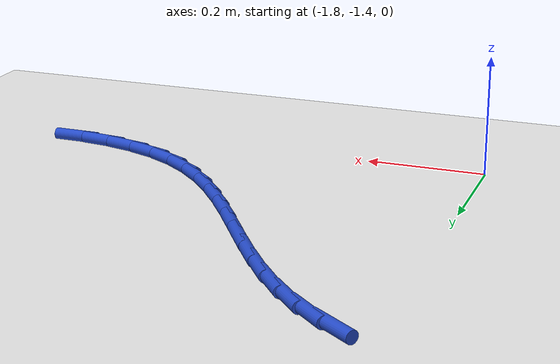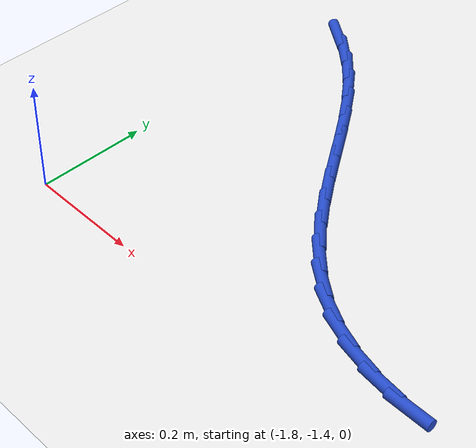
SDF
<sdf version="1.6">
 <world name="default">
  <model name="ground_plane">
   <static>1</static>
   <link name="link">
    <collision name="collision">
     <geometry><plane><normal>0 0 1</normal><size>100 100</size></plane></geometry>
     <surface><friction><ode><mu>100</mu><mu2>50</mu2></ode></friction></surface>
    </collision>
    <visual name="visual">
     <cast_shadows>0</cast_shadows>
     <geometry><plane><normal>0 0 1</normal><size>100 100</size></plane></geometry>
     <material>
      <script><uri>file://media/materials/scripts/gazebo.material</uri><name>Gazebo/WhiteGlow</name></script>
     </material>
    </visual>
   </link>
  </model>
  <model name="line">
   <link name="link_89">
    <pose>-1.744387899355237 -0.747061726689787 0.01 0 1.57 -0.608057349786397</pose>
    <collision name="collision">
     <geometry><cylinder><radius>0.01</radius><length>0.08</length></cylinder></geometry>
    </collision>
    <visual name="visual">
     <material>
      <script><name>Gazebo/Blue</name><uri>file://media/materials/scripts/gazebo.material</uri></script>
     </material>
     <geometry><cylinder><radius>0.01</radius><length>0.08</length></cylinder></geometry>
    </visual>
   </link>
   <link name="link_90">
    <pose>-1.7013352832800597 -0.7770276893729273 0.01 0 1.57 -0.7126815950881396</pose>
    <collision name="collision">
     <geometry><cylinder><radius>0.01</radius><length>0.08</length></cylinder></geometry>
    </collision>
    <visual name="visual">
     <material>
      <script><name>Gazebo/Blue</name><uri>file://media/materials/scripts/gazebo.material</uri></script>
     </material>
     <geometry><cylinder><radius>0.01</radius><length>0.08</length></cylinder></geometry>
    </visual>
   </link>
   <link name="link_91">
    <pose>-1.6616309877596263 -0.8113402280332115 0.01 0 1.57 -0.813413997352669</pose>
    <collision name="collision">
     <geometry><cylinder><radius>0.01</radius><length>0.08</length></cylinder></geometry>
    </collision>
    <visual name="visual">
     <material>
      <script><name>Gazebo/Blue</name><uri>file://media/materials/scripts/gazebo.material</uri></script>
     </material>
     <geometry><cylinder><radius>0.01</radius><length>0.08</length></cylinder></geometry>
    </visual>
   </link>
   <link name="link_92">
    <pose>-1.625172929646361 -0.8499005383385716 0.01 0 1.57 -0.8905216383640661</pose>
    <collision name="collision">
     <geometry><cylinder><radius>0.01</radius><length>0.08</length></cylinder></geometry>
    </collision>
    <visual name="visual">
     <material>
      <script><name>Gazebo/Blue</name><uri>file://media/materials/scripts/gazebo.material</uri></script>
     </material>
     <geometry><cylinder><radius>0.01</radius><length>0.08</length></cylinder></geometry>
    </visual>
   </link>
   <link name="link_93">
    <pose>-1.591276752775711 -0.891793401125863 0.01 0 1.57 -0.9448092618558369</pose>
    <collision name="collision">
     <geometry><cylinder><radius>0.01</radius><length>0.08</length></cylinder></geometry>
    </collision>
    <visual name="visual">
     <material>
      <script><name>Gazebo/Blue</name><uri>file://media/materials/scripts/gazebo.material</uri></script>
     </material>
     <geometry><cylinder><radius>0.01</radius><length>0.08</length></cylinder></geometry>
    </visual>
   </link>
   <link name="link_94">
    <pose>-1.559249650614877 -0.9360917488279049 0.01 0 1.57 -0.9777746125072948</pose>
    <collision name="collision">
     <geometry><cylinder><radius>0.01</radius><length>0.08</length></cylinder></geometry>
    </collision>
    <visual name="visual">
     <material>
      <script><name>Gazebo/Blue</name><uri>file://media/materials/scripts/gazebo.material</uri></script>
     </material>
     <geometry><cylinder><radius>0.01</radius><length>0.08</length></cylinder></geometry>
    </visual>
   </link>
   <link name="link_95">
    <pose>-1.5283988166310603 -0.981868513877517 0.01 0 1.57 -0.9905750589263191</pose>
    <collision name="collision">
     <geometry><cylinder><radius>0.01</radius><length>0.08</length></cylinder></geometry>
    </collision>
    <visual name="visual">
     <material>
      <script><name>Gazebo/Blue</name><uri>file://media/materials/scripts/gazebo.material</uri></script>
     </material>
     <geometry><cylinder><radius>0.01</radius><length>0.08</length></cylinder></geometry>
    </visual>
   </link>
   <link name="link_96">
    <pose>-1.4980314442914622 -1.0281966287075168 0.01 0 1.57 -0.9836712761746488</pose>
    <collision name="collision">
     <geometry><cylinder><radius>0.01</radius><length>0.08</length></cylinder></geometry>
    </collision>
    <visual name="visual">
     <material>
      <script><name>Gazebo/Blue</name><uri>file://media/materials/scripts/gazebo.material</uri></script>
     </material>
     <geometry><cylinder><radius>0.01</radius><length>0.08</length></cylinder></geometry>
    </visual>
   </link>
   <link name="link_97">
    <pose>-1.467454727063284 -1.0741490257507247 0.01 0 1.57 -0.9567091832966185</pose>
    <collision name="collision">
     <geometry><cylinder><radius>0.01</radius><length>0.08</length></cylinder></geometry>
    </collision>
    <visual name="visual">
     <material>
      <script><name>Gazebo/Blue</name><uri>file://media/materials/scripts/gazebo.material</uri></script>
     </material>
     <geometry><cylinder><radius>0.01</radius><length>0.08</length></cylinder></geometry>
    </visual>
   </link>
   <link name="link_98">
    <pose>-1.4359758584137265 -1.118798637439959 0.01 0 1.57 -0.9085691793149548</pose>
    <collision name="collision">
     <geometry><cylinder><radius>0.01</radius><length>0.08</length></cylinder></geometry>
    </collision>
    <visual name="visual">
     <material>
      <script><name>Gazebo/Blue</name><uri>file://media/materials/scripts/gazebo.material</uri></script>
     </material>
     <geometry><cylinder><radius>0.01</radius><length>0.08</length></cylinder></geometry>
    </visual>
   </link>
   <link name="link_99">
    <pose>-1.4029020318099907 -1.1612183962080396 0.01 0 1.57 -0.8376290341643458</pose>
    <collision name="collision">
     <geometry><cylinder><radius>0.01</radius><length>0.08</length></cylinder></geometry>
    </collision>
    <visual name="visual">
     <material>
      <script><name>Gazebo/Blue</name><uri>file://media/materials/scripts/gazebo.material</uri></script>
     </material>
     <geometry><cylinder><radius>0.01</radius><length>0.08</length></cylinder></geometry>
    </visual>
   </link>
   <link name="link_100">
    <pose>-1.3675404407192784 -1.2004812344877864 0.01 0 1.57 -0.7423987276970806</pose>
    <collision name="collision">
     <geometry><cylinder><radius>0.01</radius><length>0.08</length></cylinder></geometry>
    </collision>
    <visual name="visual">
     <material>
      <script><name>Gazebo/Blue</name><uri>file://media/materials/scripts/gazebo.material</uri></script>
     </material>
     <geometry><cylinder><radius>0.01</radius><length>0.08</length></cylinder></geometry>
    </visual>
   </link>
   <link name="link_101">
    <pose>-1.3291982786087906 -1.2356600847120165 0.01 0 1.57 -0.6227146331196723</pose>
    <collision name="collision">
     <geometry><cylinder><radius>0.01</radius><length>0.08</length></cylinder></geometry>
    </collision>
    <visual name="visual">
     <material>
      <script><name>Gazebo/Blue</name><uri>file://media/materials/scripts/gazebo.material</uri></script>
     </material>
     <geometry><cylinder><radius>0.01</radius><length>0.08</length></cylinder></geometry>
    </visual>
   </link>
   <link name="link_102">
    <pose>-1.2871827389457282 -1.2658278793135502 0.01 0 1.57 -0.4826111273359344</pose>
    <collision name="collision">
     <geometry><cylinder><radius>0.01</radius><length>0.08</length></cylinder></geometry>
    </collision>
    <visual name="visual">
     <material>
      <script><name>Gazebo/Blue</name><uri>file://media/materials/scripts/gazebo.material</uri></script>
     </material>
     <geometry><cylinder><radius>0.01</radius><length>0.08</length></cylinder></geometry>
    </visual>
   </link>
   <link name="link_103">
    <pose>-1.2408632303119198 -1.2900962542637713 0.01 0 1.57 -0.3446160255067318</pose>
    <collision name="collision">
     <geometry><cylinder><radius>0.01</radius><length>0.08</length></cylinder></geometry>
    </collision>
    <visual name="visual">
     <material>
      <script><name>Gazebo/Blue</name><uri>file://media/materials/scripts/gazebo.material</uri></script>
     </material>
     <geometry><cylinder><radius>0.01</radius><length>0.08</length></cylinder></geometry>
    </visual>
   </link>
   <link name="link_104">
    <pose>-1.1905433771059508 -1.3081580139222966 0.01 0 1.57 -0.22140097783021592</pose>
    <collision name="collision">
     <geometry><cylinder><radius>0.01</radius><length>0.08</length></cylinder></geometry>
    </collision>
    <visual name="visual">
     <material>
      <script><name>Gazebo/Blue</name><uri>file://media/materials/scripts/gazebo.material</uri></script>
     </material>
     <geometry><cylinder><radius>0.01</radius><length>0.08</length></cylinder></geometry>
    </visual>
   </link>
   <link name="link_105">
    <pose>-1.1372476530254303 -1.3201543973870071 0.01 0 1.57 -0.109715340119208</pose>
    <collision name="collision">
     <geometry><cylinder><radius>0.01</radius><length>0.08</length></cylinder></geometry>
    </collision>
    <visual name="visual">
     <material>
      <script><name>Gazebo/Blue</name><uri>file://media/materials/scripts/gazebo.material</uri></script>
     </material>
     <geometry><cylinder><radius>0.01</radius><length>0.08</length></cylinder></geometry>
    </visual>
   </link>
   <link name="link_106">
    <pose>-1.082019172285465 -1.3262382398766352 0.01 0 1.57 -0.005775908215680267</pose>
    <collision name="collision">
     <geometry><cylinder><radius>0.01</radius><length>0.08</length></cylinder></geometry>
    </collision>
    <visual name="visual">
     <material>
      <script><name>Gazebo/Blue</name><uri>file://media/materials/scripts/gazebo.material</uri></script>
     </material>
     <geometry><cylinder><radius>0.01</radius><length>0.08</length></cylinder></geometry>
    </visual>
   </link>
  </model>
 </world>
</sdf>
